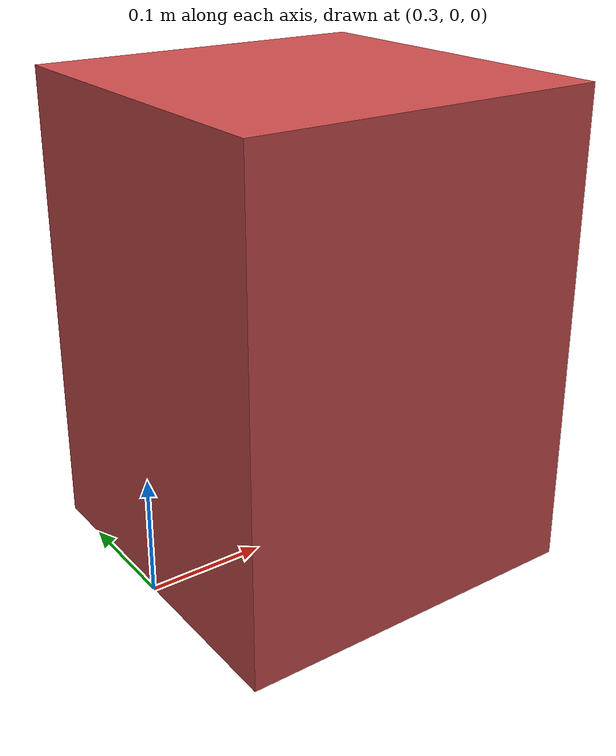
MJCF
<mujoco>
    <worldbody>
        <body name="box" pos="0.45 0 0.20">
            <freejoint name="box_free"/>
            <geom
                type="box"
                size="0.15 0.15 0.2"
                density="10"
                condim="6"
                friction="3.5 0.2 0.08"
                solref="0.004 1"
                solimp="0.95 0.995 0.001"
                rgba="0.8 0.3 0.3 1"/>
        </body>
    </worldbody>
</mujoco>
